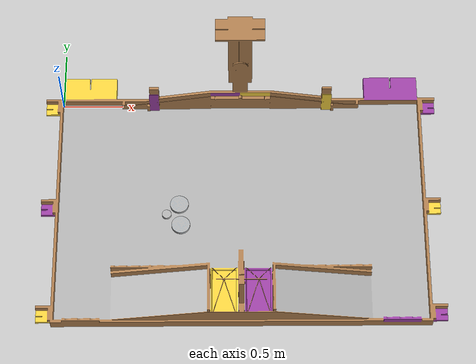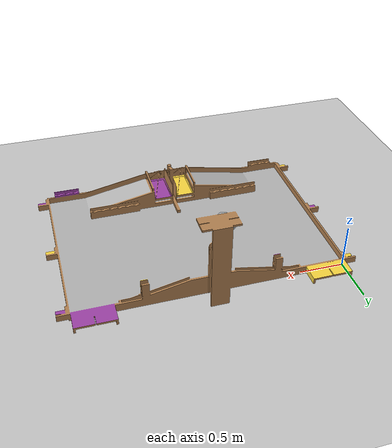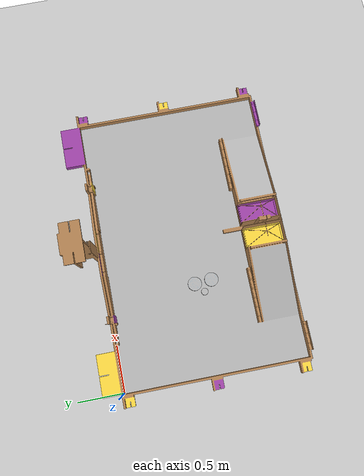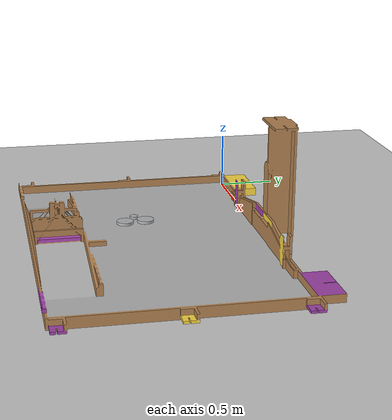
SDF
<sdf version="1.6">
 <world name="default">
  <light name="sun" type="directional">
   <pose>0 0 10 0 -0 0</pose>
   <diffuse>0.8 0.8 0.8 1</diffuse>
   <specular>0.2 0.2 0.2 1</specular>
   <attenuation>
    <range>1000</range>
    <constant>0.9</constant>
    <linear>0.01</linear>
    <quadratic>0.001</quadratic>
   </attenuation>
   <direction>-0.5 0.1 -0.9</direction>
  </light>
  <model name="ground_plane">
   <static>1</static>
   <link name="link">
    <collision name="collision">
     <geometry><plane><normal>0 0 1</normal><size>100 100</size></plane></geometry>
     <surface><friction><ode><mu>100</mu><mu2>50</mu2></ode></friction></surface>
    </collision>
    <visual name="visual">
     <cast_shadows>0</cast_shadows>
     <geometry><plane><normal>0 0 1</normal><size>100 100</size></plane></geometry>
     <material>
      <script><uri>file://media/materials/scripts/gazebo.material</uri><name>Gazebo/Grey</name></script>
     </material>
    </visual>
   </link>
  </model>
  <gravity>0 0 -9.8</gravity>
  <magnetic_field>6e-06 2.3e-05 -4.2e-05</magnetic_field>
  <atmosphere type="adiabatic"/>
  <physics name="default_physics" default="0" type="ode">
   <max_step_size>0.001</max_step_size>
   <real_time_factor>1</real_time_factor>
   <real_time_update_rate>1000</real_time_update_rate>
  </physics>
  <scene><ambient>0.4 0.4 0.4 1</ambient><background>0.7 0.7 0.7 1</background><shadows>1</shadows></scene>
  <spherical_coordinates>
   <surface_model>EARTH_WGS84</surface_model>
   <latitude_deg>0</latitude_deg>
   <longitude_deg>0</longitude_deg>
   <elevation>0</elevation>
   <heading_deg>0</heading_deg>
  </spherical_coordinates>
  <model name="eurobot2019">
   <link name="base_link">
    <inertial>
     <pose>1.5 -0.97131 0.064683 0 -0 0</pose>
     <mass>1000</mass>
     <inertia>
      <ixx>117.72</ixx>
      <ixy>0.001115</ixy>
      <ixz>8.0681e-05</ixz>
      <iyy>162.37</iyy>
      <iyz>-6.3727</iyz>
      <izz>270.51</izz>
     </inertia>
    </inertial>
    <collision name="base_link_collision">
     <geometry>
      <mesh>
       <scale>1 1 1</scale>
       <uri>/home/parallels/catkin_ws/src/ros_eurobot2019/gazebo/eurobot2019/meshes/base_link1.dae</uri>
      </mesh>
     </geometry>
    </collision>
    <visual name="base_link_visual">
     <geometry>
      <mesh>
       <scale>1 1 1</scale>
       <uri>/home/parallels/catkin_ws/src/ros_eurobot2019/gazebo/eurobot2019/meshes/base_link1.dae</uri>
      </mesh>
     </geometry>
    </visual>
   </link>
   <joint name="fixed" type="fixed"><child>base_link</child><parent>world</parent></joint>
  </model>
  <light name="user_directional_light_0" type="directional">
   <pose>-0.552266 1.46304 1 0 -0 0</pose>
   <diffuse>0.5 0.5 0.5 1</diffuse>
   <specular>0.1 0.1 0.1 1</specular>
   <direction>0.1 0.1 -0.9</direction>
   <attenuation>
    <range>20</range>
    <constant>0.5</constant>
    <linear>0.01</linear>
    <quadratic>0.001</quadratic>
   </attenuation>
  </light>
  <model name="atom1">
   <link name="link">
    <pose>0 0 0.0125 0 -0 0</pose>
    <inertial>
     <pose>0 0 0.0125 0 -0 0</pose>
     <mass>0.06</mass>
     <inertia><ixx>0.0005</ixx><ixy>0</ixy><ixz>0</ixz><iyy>0.0005</iyy><iyz>0</iyz><izz>0.0001</izz></inertia>
    </inertial>
    <collision name="collision">
     <geometry><mesh><uri>model://atom1/meshes/atom1.dae</uri></mesh></geometry>
    </collision>
    <visual name="visual"><geometry><mesh><uri>model://atom1/meshes/atom1.dae</uri></mesh></geometry></visual>
   </link>
   <pose>1.00607 -1.14101 0.009991 7e-06 6e-06 -4.6e-05</pose>
  </model>
  <model name="atom1_0">
   <link name="link">
    <pose>0 0 0.0125 0 -0 0</pose>
    <inertial>
     <pose>0 0 0.0125 0 -0 0</pose>
     <mass>0.06</mass>
     <inertia><ixx>0.0005</ixx><ixy>0</ixy><ixz>0</ixz><iyy>0.0005</iyy><iyz>0</iyz><izz>0.0001</izz></inertia>
    </inertial>
    <collision name="collision">
     <geometry><mesh><uri>model://atom1/meshes/atom1.dae</uri></mesh></geometry>
    </collision>
    <visual name="visual"><geometry><mesh><uri>model://atom1/meshes/atom1.dae</uri></mesh></geometry></visual>
   </link>
   <pose>0.992387 -0.953322 0.00999 6e-06 6e-06 3e-06</pose>
  </model>
  <model name="atom3">
   <link name="link">
    <pose>0 0 0.0125 0 -0 0</pose>
    <inertial>
     <pose>0 0 0.0125 0 -0 0</pose>
     <mass>0.17</mass>
     <inertia><ixx>0.0005</ixx><ixy>0</ixy><ixz>0</ixz><iyy>0.0005</iyy><iyz>0</iyz><izz>0.0001</izz></inertia>
    </inertial>
    <collision name="collision">
     <geometry><mesh><uri>model://atom3/meshes/atom3.dae</uri></mesh></geometry>
    </collision>
    <visual name="visual"><geometry><mesh><uri>model://atom3/meshes/atom3.dae</uri></mesh></geometry></visual>
   </link>
   <pose>0.889283 -1.04422 0.009991 2e-06 6e-06 -0.000699</pose>
  </model>
 </world>
</sdf>
